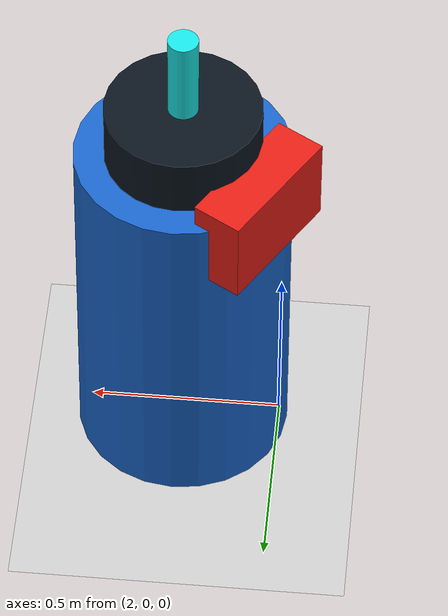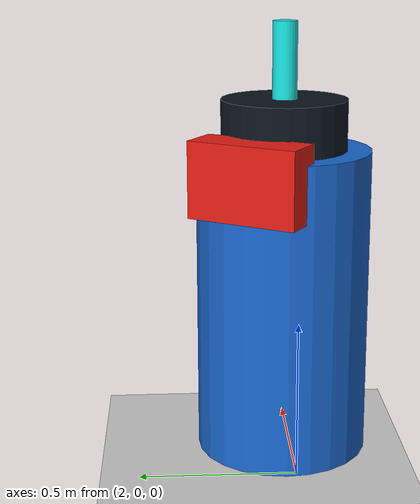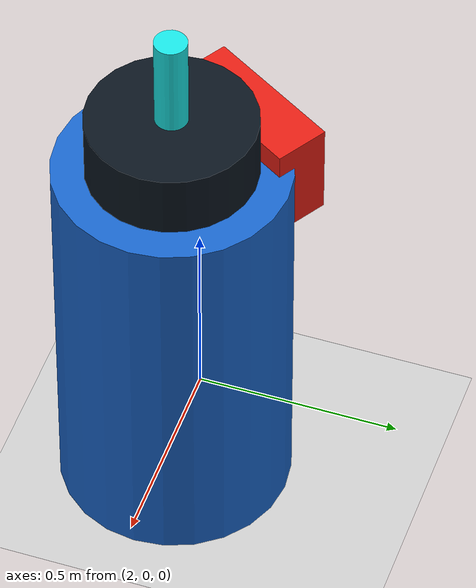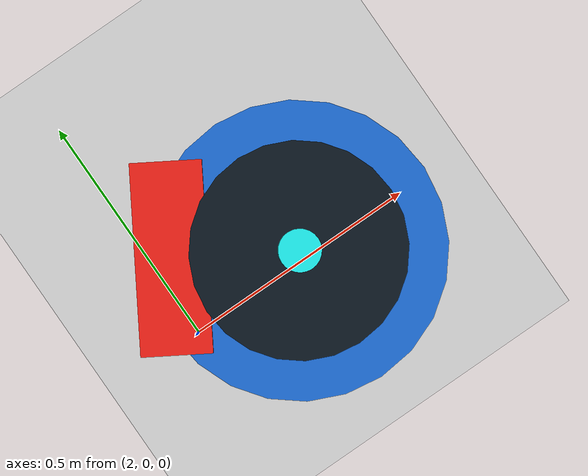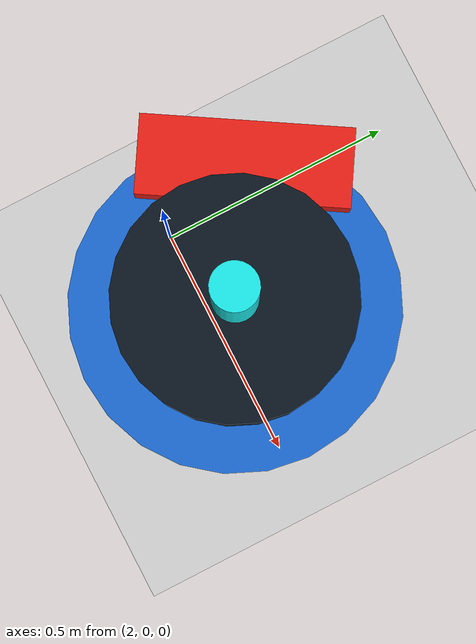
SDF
<sdf version="1.7">
 <world name="default">
  <plugin name="socnav_plugin" filename="libSocNavPlugin.so">
   <robot_name>robot</robot_name>
   <trajectory_file>/home/hunav_gz_classic_ws/SocNav3_trajectories/src6/000003922.json</trajectory_file>
   <human_slots>2</human_slots>
   <goal_angle_mesh>
    <angle_threshold>0.684196379031</angle_threshold>
    <uri>/home/hunav_gz_classic_ws/src/socnav_gazebo_reproducer/meshes/000003922_goal_angle_00.stl</uri>
   </goal_angle_mesh>
  </plugin>
  <light name="sun" type="directional">
   <pose>0 0 10 0 -0 0</pose>
   <diffuse>0.8 0.8 0.8 1</diffuse>
   <specular>0.2 0.2 0.2 1</specular>
   <attenuation>
    <range>1000</range>
    <constant>0.9</constant>
    <linear>0.01</linear>
    <quadratic>0.001</quadratic>
   </attenuation>
   <direction>-0.5 0.1 -0.9</direction>
   <spot><inner_angle>0</inner_angle><outer_angle>0</outer_angle><falloff>0</falloff></spot>
  </light>
  <model name="ground_plane">
   <static>1</static>
   <link name="link">
    <collision name="collision">
     <geometry><plane><normal>0 0 1</normal><size>100 100</size></plane></geometry>
     <surface><friction><ode><mu>100</mu><mu2>50</mu2></ode></friction></surface>
    </collision>
    <visual name="visual">
     <cast_shadows>0</cast_shadows>
     <geometry><plane><normal>0 0 1</normal><size>100 100</size></plane></geometry>
     <material>
      <script><uri>file://media/materials/scripts/kitchen.material</uri><name>Kitchen/CounterTop_H</name></script>
     </material>
    </visual>
   </link>
  </model>
  <gravity>0 0 -9.8</gravity>
  <magnetic_field>6e-06 2.3e-05 -4.2e-05</magnetic_field>
  <atmosphere type="adiabatic"/>
  <physics type="ode">
   <max_step_size>0.001</max_step_size>
   <real_time_factor>1</real_time_factor>
   <real_time_update_rate>1000</real_time_update_rate>
  </physics>
  <scene><ambient>0.4 0.4 0.4 1</ambient><background>0.7 0.7 0.7 1</background><shadows>1</shadows></scene>
  <audio><device>default</device></audio>
  <spherical_coordinates>
   <surface_model>EARTH_WGS84</surface_model>
   <latitude_deg>0</latitude_deg>
   <longitude_deg>0</longitude_deg>
   <elevation>0</elevation>
   <heading_deg>0</heading_deg>
  </spherical_coordinates>
  <model name="robot">
   <pose>2.2553817303303605 0.025484246397872612 0.5 0 0 2.5969369897886283</pose>
   <link name="link">
    <collision name="collision">
     <geometry><cylinder><radius>0.27929515662341275</radius><length>1.0</length></cylinder></geometry>
    </collision>
    <visual name="visual">
     <geometry><cylinder><radius>0.27929515662341275</radius><length>1.0</length></cylinder></geometry>
     <material><ambient>0.1 0.4 0.8 1</ambient><diffuse>0.1 0.4 0.8 1</diffuse></material>
    </visual>
    <visual name="robot_top">
     <pose>0 0 0.58 0 0 0</pose>
     <geometry><cylinder><radius>0.20109251276885717</radius><length>0.16</length></cylinder></geometry>
     <material><ambient>0.04 0.08 0.12 1</ambient><diffuse>0.04 0.08 0.12 1</diffuse></material>
    </visual>
    <visual name="robot_front">
     <pose>0.23460793156366672 0 0.44 0 0 0</pose>
     <geometry><box><size>0.13406167517923812 0.3574978004779683 0.24</size></box></geometry>
     <material><ambient>0.9 0.12 0.08 1</ambient><diffuse>0.9 0.12 0.08 1</diffuse></material>
    </visual>
    <visual name="robot_sensor">
     <pose>0 0 0.78 0 0 0</pose>
     <geometry><cylinder><radius>0.03910132192727779</radius><length>0.24</length></cylinder></geometry>
     <material><ambient>0.1 0.9 0.9 1</ambient><diffuse>0.1 0.9 0.9 1</diffuse></material>
    </visual>
   </link>
  </model>
  <model name="simple_world_test"><static>1</static></model>
 </world>
</sdf>
